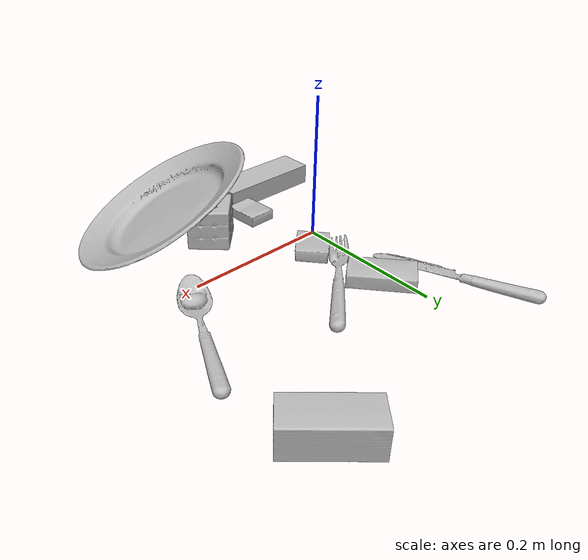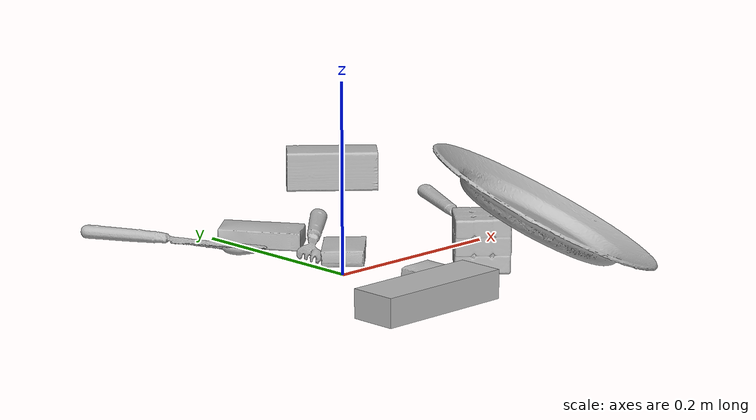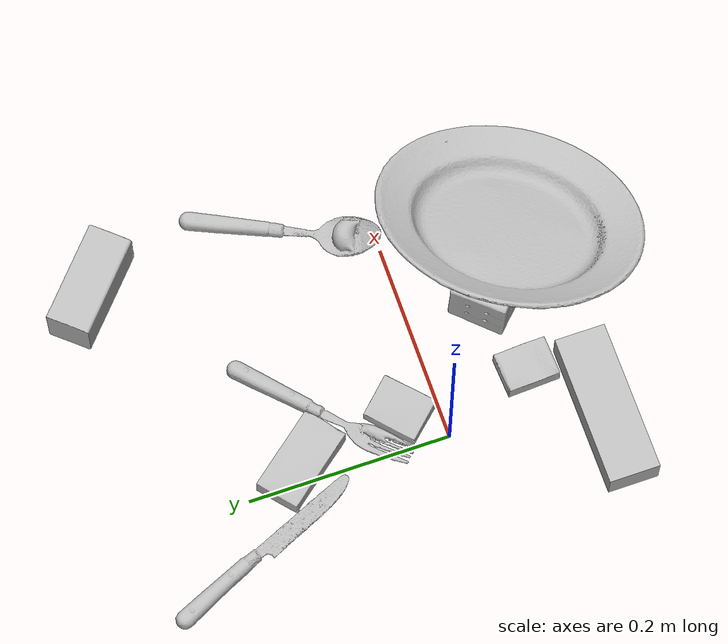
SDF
<sdf version="1.4">
  <world name="default">
    <light name="light1" type="point">
      <pose>0 0 1 0 0 0</pose>
      <diffuse>3 3 3 1</diffuse>
      <specular>3 3 3 1</specular>
    </light>
    <light name="light2" type="point">
      <pose>0 0.5 2 0 0 0</pose>
      <diffuse>1 1 1 1</diffuse>
      <specular>1 1 1 1</specular>
    </light>
    <light name="light3" type="point">
      <pose>0 0.5 2 0 0 0</pose>
      <diffuse>3 3 3 1</diffuse>
      <specular>3 3 3 1</specular>
    </light>
    <scene>
      <ambient>0.7 0.7 0.7</ambient>
    </scene>
    <model name="box11">
      <link name="link_box11">
        <collision name="default">
          <geometry>
            <mesh>
              <uri>model://rubiks_cube/collision_meshes/collision.obj</uri>
              <scale>1.0 1.0 1.0</scale>
            </mesh>
          </geometry>
          <surface>
            <friction>
              <ode>
                <mu>0.5</mu>
                <mu2>0.5</mu2>
              </ode>
            </friction>
          <contact>
        <ode>
            <max_vel>0</max_vel>
            <min_depth>0.0001</min_depth>
            <kp>1e8</kp>
        </ode>
    </contact></surface>
        </collision>
        <visual name="default">
          <geometry>
            <mesh>
              <uri>model://rubiks_cube/visual_meshes/visual.dae</uri>
              <scale>1.0 1.0 1.0</scale>
            </mesh>
          </geometry>
        </visual>
        <inertial>
          <mass>0.14537504315376282</mass>
          <pose>2.6721039830590598e-05 5.2569666877388954e-05 -7.264316082000732e-06 -0.05467316775404926 -0.09814130205097539 -0.03445549690793288</pose>
          <inertia>
            <ixx>8.032947e-05</ixx>
            <iyy>7.9954865e-05</iyy>
            <izz>8.099513e-05</izz>
            <ixy>0</ixy>
            <ixz>0</ixz>
            <iyz>0</iyz>
          </inertia>
        </inertial>
      </link>
      <pose>0.11976896226406097 -0.08008211106061935 0.02867906540632248 -1.1555725129413312e-06 -3.3981249336795087e-06 2.413667377682994</pose>
    </model>
    <model name="box12">
      <link name="link_box12">
        <collision name="default">
          <geometry>
            <mesh>
              <uri>model://cracker_box/collision_meshes/collision.obj</uri>
              <scale>0.25 0.25 0.25</scale>
            </mesh>
          </geometry>
          <surface>
            <friction>
              <ode>
                <mu>0.5</mu>
                <mu2>0.5</mu2>
              </ode>
            </friction>
          <contact>
        <ode>
            <max_vel>0</max_vel>
            <min_depth>0.0001</min_depth>
            <kp>1e8</kp>
        </ode>
    </contact></surface>
        </collision>
        <visual name="default">
          <geometry>
            <mesh>
              <uri>model://cracker_box/visual_meshes/visual.dae</uri>
              <scale>0.25 0.25 0.25</scale>
            </mesh>
          </geometry>
        </visual>
        <inertial>
          <mass>0.04629049822688103</mass>
          <pose>0.00023660360602661967 6.358561950037256e-05 -0.00042573834070935845 -0.00031620769195764 -0.01110649332573822 0.0025467952358288496</pose>
          <inertia>
            <ixx>7.358898e-06</ixx>
            <iyy>1.2150985e-05</iyy>
            <izz>1.7340568e-05</izz>
            <ixy>0</ixy>
            <ixz>0</ixz>
            <iyz>0</iyz>
          </inertia>
        </inertial>
      </link>
      <pose>0.039604026824235916 -0.09113460034132004 0.009120448492467403 -0.011787980701531052 -0.0073671466391500495 1.6196424576611088</pose>
    </model>
    <model name="box13">
      <link name="link_box13">
        <collision name="default">
          <geometry>
            <mesh>
              <uri>model://sugar_box/collision_meshes/collision.obj</uri>
              <scale>0.5 0.5 0.5</scale>
            </mesh>
          </geometry>
          <surface>
            <friction>
              <ode>
                <mu>0.5</mu>
                <mu2>0.5</mu2>
              </ode>
            </friction>
          <contact>
        <ode>
            <max_vel>0</max_vel>
            <min_depth>0.0001</min_depth>
            <kp>1e8</kp>
        </ode>
    </contact></surface>
        </collision>
        <visual name="default">
          <geometry>
            <mesh>
              <uri>model://sugar_box/visual_meshes/visual.dae</uri>
              <scale>0.5 0.5 0.5</scale>
            </mesh>
          </geometry>
        </visual>
        <inertial>
          <mass>0.06844717264175415</mass>
          <pose>0.0005171863595023751 1.924554817378521e-05 -0.00018182402709499002 -0.0004046259509043031 0.0010506635218006705 0.0026153792547683827</pose>
          <inertia>
            <ixx>1.4257497e-05</ixx>
            <iyy>4.608316e-05</iyy>
            <izz>5.5167053e-05</izz>
            <ixy>0</ixy>
            <ixz>0</ixz>
            <iyz>0</iyz>
          </inertia>
        </inertial>
      </link>
      <pose>0.01837732084095478 0.14186018705368042 0.011399304494261742 0.0007759338489897462 -0.023432873973316042 2.2477349523726495</pose>
    </model>
    <model name="box21">
      <link name="link_box21">
        <collision name="default">
          <geometry>
            <mesh>
              <uri>model://wood_block/collision_meshes/collision.obj</uri>
              <scale>0.5 0.5 0.5</scale>
            </mesh>
          </geometry>
          <surface>
            <friction>
              <ode>
                <mu>0.5</mu>
                <mu2>0.5</mu2>
              </ode>
            </friction>
          <contact>
        <ode>
            <max_vel>0</max_vel>
            <min_depth>0.0001</min_depth>
            <kp>1e8</kp>
        </ode>
    </contact></surface>
        </collision>
        <visual name="default">
          <geometry>
            <mesh>
              <uri>model://wood_block/visual_meshes/visual.dae</uri>
              <scale>0.5 0.5 0.5</scale>
            </mesh>
          </geometry>
        </visual>
        <inertial>
          <mass>0.22006426751613617</mass>
          <pose>-2.9066577553749084e-06 -0.00028540476341731846 0.00013204292918089777 -0.05220890442695651 -0.005192696130650637 -0.006861379915905358</pose>
          <inertia>
            <ixx>7.361981e-05</ixx>
            <iyy>0.00023256506</iyy>
            <izz>0.00023169514</izz>
            <ixy>0</ixy>
            <ixz>0</ixz>
            <iyz>0</iyz>
          </inertia>
        </inertial>
      </link>
      <pose>0.24703393876552582 0.2762874662876129 0.022629259154200554 -0.005208447898461368 0.005718795401727568 -0.7222399719409227</pose>
    </model>
    <model name="box22">
      <link name="link_box22">
        <collision name="default">
          <geometry>
            <mesh>
              <uri>model://jenga/collision_meshes/collision.obj</uri>
              <scale>1.0 1.0 1.0</scale>
            </mesh>
          </geometry>
          <surface>
            <friction>
              <ode>
                <mu>0.5</mu>
                <mu2>0.5</mu2>
              </ode>
            </friction>
          <contact>
        <ode>
            <max_vel>0</max_vel>
            <min_depth>0.0001</min_depth>
            <kp>1e8</kp>
        </ode>
    </contact></surface>
        </collision>
        <visual name="default">
          <geometry>
            <mesh>
              <uri>model://jenga/visual_meshes/visual.dae</uri>
              <scale>1.0 1.0 1.0</scale>
            </mesh>
          </geometry>
        </visual>
        <inertial>
          <mass>0.1883949637413025</mass>
          <pose>-2.502855807051674e-07 -0.00010250010382151231 -4.0923405322246253e-05 0.0 -7.342154049184251e-07 0.0</pose>
          <inertia>
            <ixx>5.213346e-05</ixx>
            <iyy>0.0003532549</iyy>
            <izz>0.00037712968</izz>
            <ixy>0</ixy>
            <ixz>0</ixz>
            <iyz>0</iyz>
          </inertia>
        </inertial>
      </link>
      <pose>-0.026157205924391747 -0.1473175585269928 0.014999998733401299 1.9679219678958583e-08 3.3193057191855606e-09 0.002167452635541001</pose>
    </model>
    <model name="box23">
      <link name="link_box23">
        <collision name="default">
          <geometry>
            <mesh>
              <uri>model://pudding_box/collision_meshes/collision.obj</uri>
              <scale>0.5 0.5 0.5</scale>
            </mesh>
          </geometry>
          <surface>
            <friction>
              <ode>
                <mu>0.5</mu>
                <mu2>0.5</mu2>
              </ode>
            </friction>
          <contact>
        <ode>
            <max_vel>0</max_vel>
            <min_depth>0.0001</min_depth>
            <kp>1e8</kp>
        </ode>
    </contact></surface>
        </collision>
        <visual name="default">
          <geometry>
            <mesh>
              <uri>model://pudding_box/visual_meshes/visual.dae</uri>
              <scale>0.5 0.5 0.5</scale>
            </mesh>
          </geometry>
        </visual>
        <inertial>
          <mass>0.030779412016272545</mass>
          <pose>0.00024474109522998333 0.0004033942532259971 -0.0002594413817860186 0.0052131022413302 -0.00660379919873188 0.020079828882866795</pose>
          <inertia>
            <ixx>8.6986365e-06</ixx>
            <iyy>5.8525034e-06</iyy>
            <izz>1.2845808e-05</izz>
            <ixy>0</ixy>
            <ixz>0</ixz>
            <iyz>0</iyz>
          </inertia>
        </inertial>
      </link>
      <pose>0.037231285125017166 0.03723537176847458 0.009862907230854034 0.022348921877602162 -0.011391432129453842 -0.8214541623929177</pose>
    </model>
    <model name="plate1">
      <link name="link_plate1">
        <collision name="default">
          <geometry>
            <mesh>
              <uri>model://plate/collision_meshes/collision.obj</uri>
              <scale>1.0 1.0 1.0</scale>
            </mesh>
          </geometry>
          <surface>
            <friction>
              <ode>
                <mu>0.5</mu>
                <mu2>0.5</mu2>
              </ode>
            </friction>
          <contact>
        <ode>
            <max_vel>0</max_vel>
            <min_depth>0.0001</min_depth>
            <kp>1e8</kp>
        </ode>
    </contact></surface>
        </collision>
        <visual name="default">
          <geometry>
            <mesh>
              <uri>model://plate/visual_meshes/visual.dae</uri>
              <scale>1.0 1.0 1.0</scale>
            </mesh>
          </geometry>
        </visual>
        <inertial>
          <mass>0.2551877498626709</mass>
          <pose>-0.0006044633337296546 0.0002782584633678198 -0.0010561984963715076 0.002218758596895186 -0.003225500510611216 0.45261892370472845</pose>
          <inertia>
            <ixx>0.0011937734</ixx>
            <iyy>0.0011823553</iyy>
            <izz>0.002334842</izz>
            <ixy>0</ixy>
            <ixz>0</ixz>
            <iyz>0</iyz>
          </inertia>
        </inertial>
      </link>
      <pose>0.16771584749221802 -0.11759033054113388 0.05334994196891785 0.08292110563633286 -0.4794405678906072 2.3005893623892986</pose>
    </model>
    <model name="silverware1">
      <link name="link_silverware1">
        <collision name="default">
          <geometry>
            <mesh>
              <uri>model://knife/collision_meshes/collision.obj</uri>
              <scale>1.0 1.0 1.0</scale>
            </mesh>
          </geometry>
          <surface>
            <friction>
              <ode>
                <mu>0.5</mu>
                <mu2>0.5</mu2>
              </ode>
            </friction>
          <contact>
        <ode>
            <max_vel>0</max_vel>
            <min_depth>0.0001</min_depth>
            <kp>1e8</kp>
        </ode>
    </contact></surface>
        </collision>
        <visual name="default">
          <geometry>
            <mesh>
              <uri>model://knife/visual_meshes/visual.dae</uri>
              <scale>1.0 1.0 1.0</scale>
            </mesh>
          </geometry>
        </visual>
        <inertial>
          <mass>0.030903667211532593</mass>
          <pose>-0.023785250261425972 0.0015275125624611974 5.062023410573602e-05 0.07305665398911224 0.017248417197799442 -0.0074098217442817044</pose>
          <inertia>
            <ixx>8.7717143e-07</ixx>
            <iyy>0.00011872688</iyy>
            <izz>0.000119009375</izz>
            <ixy>0</ixy>
            <ixz>0</ixz>
            <iyz>0</iyz>
          </inertia>
        </inertial>
      </link>
      <pose>-0.05406525358557701 0.202270969748497 0.007946518249809742 -0.02390362937703355 -0.014542489610601055 -1.167920088911832</pose>
    </model>
    <model name="silverware2">
      <link name="link_silverware2">
        <collision name="default">
          <geometry>
            <mesh>
              <uri>model://spoon/collision_meshes/collision.obj</uri>
              <scale>1.0 1.0 1.0</scale>
            </mesh>
          </geometry>
          <surface>
            <friction>
              <ode>
                <mu>0.5</mu>
                <mu2>0.5</mu2>
              </ode>
            </friction>
          <contact>
        <ode>
            <max_vel>0</max_vel>
            <min_depth>0.0001</min_depth>
            <kp>1e8</kp>
        </ode>
    </contact></surface>
        </collision>
        <visual name="default">
          <geometry>
            <mesh>
              <uri>model://spoon/visual_meshes/visual.dae</uri>
              <scale>1.0 1.0 1.0</scale>
            </mesh>
          </geometry>
        </visual>
        <inertial>
          <mass>0.020994963124394417</mass>
          <pose>-0.005526323337107897 -0.00160341733135283 -0.0007271658978424966 0.035216710718480135 -0.03906584501417282 0.00615060951780049</pose>
          <inertia>
            <ixx>1.1677738e-06</ixx>
            <iyy>7.988513e-05</iyy>
            <izz>8.046103e-05</izz>
            <ixy>0</ixy>
            <ixz>0</ixz>
            <iyz>0</iyz>
          </inertia>
        </inertial>
      </link>
      <pose>0.2503916919231415 0.0831010639667511 0.00838526152074337 0.006731847679169999 0.026892993996870253 -2.005705892600717</pose>
    </model>
    <model name="silverware3">
      <link name="link_silverware3">
        <collision name="default">
          <geometry>
            <mesh>
              <uri>model://fork/collision_meshes/collision.obj</uri>
              <scale>1.0 1.0 1.0</scale>
            </mesh>
          </geometry>
          <surface>
            <friction>
              <ode>
                <mu>0.5</mu>
                <mu2>0.5</mu2>
              </ode>
            </friction>
          <contact>
        <ode>
            <max_vel>0</max_vel>
            <min_depth>0.0001</min_depth>
            <kp>1e8</kp>
        </ode>
    </contact></surface>
        </collision>
        <visual name="default">
          <geometry>
            <mesh>
              <uri>model://fork/visual_meshes/visual.dae</uri>
              <scale>1.0 1.0 1.0</scale>
            </mesh>
          </geometry>
        </visual>
        <inertial>
          <mass>0.012144052423536777</mass>
          <pose>-0.029570043087005615 0.0004658822144847363 0.0003218860656488687 -0.013551171335247731 -0.01097783699854739 0.014453902564514984</pose>
          <inertia>
            <ixx>4.257177e-07</ixx>
            <iyy>3.170462e-05</iyy>
            <izz>3.1895037e-05</izz>
            <ixy>0</ixy>
            <ixz>0</ixz>
            <iyz>0</iyz>
          </inertia>
        </inertial>
      </link>
      <pose>0.06132432073354721 0.10953465104103088 0.005709860008209944 -0.18276352052408465 0.024599598225245167 -2.3927711387405615</pose>
    </model>
  <physics type="ode">
      <max_contacts>50</max_contacts>
      <ode>
        <solver>
          <type>quick</type>
          <iters>75</iters>
        </solver>
        <constraints>
          <contact_max_correcting_vel>0</contact_max_correcting_vel>
          <contact_surface_layer>0</contact_surface_layer>
        </constraints>
      </ode>
    </physics></world>
</sdf>
